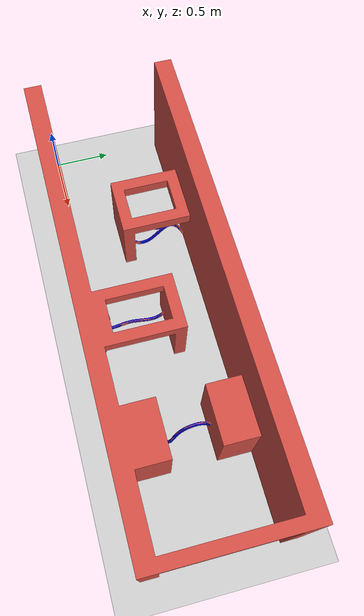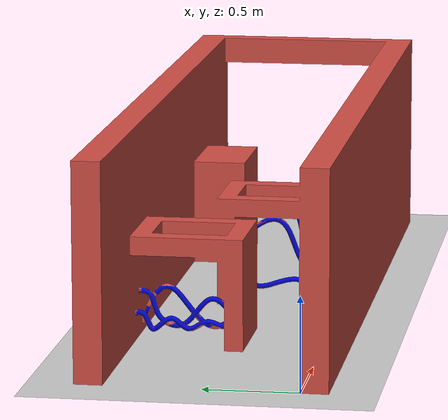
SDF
<sdf version="1.7">
 <world name="default">
  <light name="sun" type="directional">
   <pose>0 0 10 0 -0 0</pose>
   <diffuse>0.8 0.8 0.8 1</diffuse>
   <specular>0.2 0.2 0.2 1</specular>
   <attenuation>
    <range>1000</range>
    <constant>0.9</constant>
    <linear>0.01</linear>
    <quadratic>0.001</quadratic>
   </attenuation>
   <direction>-0.5 0.1 -0.9</direction>
   <spot><inner_angle>0</inner_angle><outer_angle>0</outer_angle><falloff>0</falloff></spot>
  </light>
  <model name="ground_plane">
   <static>1</static>
   <link name="link">
    <collision name="collision">
     <geometry><plane><normal>0 0 1</normal><size>100 100</size></plane></geometry>
     <surface>
      <contact><collide_bitmask>65535</collide_bitmask></contact>
      <friction><ode><mu>100</mu><mu2>50</mu2></ode></friction>
     </surface>
    </collision>
    <visual name="visual">
     <cast_shadows>0</cast_shadows>
     <geometry><plane><normal>0 0 1</normal><size>100 100</size></plane></geometry>
     <material>
      <script><uri>file://media/materials/scripts/gazebo.material</uri><name>Gazebo/Grey</name></script>
     </material>
    </visual>
   </link>
  </model>
  <gravity>0 0 -9.8</gravity>
  <magnetic_field>6e-06 2.3e-05 -4.2e-05</magnetic_field>
  <atmosphere type="adiabatic"/>
  <physics type="ode">
   <max_step_size>0.001</max_step_size>
   <real_time_factor>1</real_time_factor>
   <real_time_update_rate>1000</real_time_update_rate>
  </physics>
  <scene><ambient>0.4 0.4 0.4 1</ambient><background>0.7 0.7 0.7 1</background><shadows>1</shadows></scene>
  <spherical_coordinates>
   <surface_model>EARTH_WGS84</surface_model>
   <latitude_deg>0</latitude_deg>
   <longitude_deg>0</longitude_deg>
   <elevation>0</elevation>
   <heading_deg>0</heading_deg>
  </spherical_coordinates>
  <model name="wire_hallway">
   <static>1</static>
   <pose>4 1.15 0 0 0 3.14</pose>
   <link name="hallway">
    <inertial>
     <mass>1000</mass>
     <inertia><ixx>0.145833</ixx><ixy>0</ixy><ixz>0</ixz><iyy>0.145833</iyy><iyz>0</iyz><izz>0.125</izz></inertia>
    </inertial>
    <collision name="hallway_collision">
     <geometry>
      <mesh>
       <scale>0.1 0.1 0.1</scale>
       <uri>/usr/local/src/robotics/src/mae252_autonomous_robotics/robot_gazebo/models/hard_experiment.dae</uri>
      </mesh>
     </geometry>
    </collision>
    <visual name="hallway_visual">
     <geometry>
      <mesh>
       <scale>0.1 0.1 0.1</scale>
       <uri>/usr/local/src/robotics/src/mae252_autonomous_robotics/robot_gazebo/models/hard_experiment.dae</uri>
      </mesh>
     </geometry>
    </visual>
   </link>
  </model>
 </world>
</sdf>
